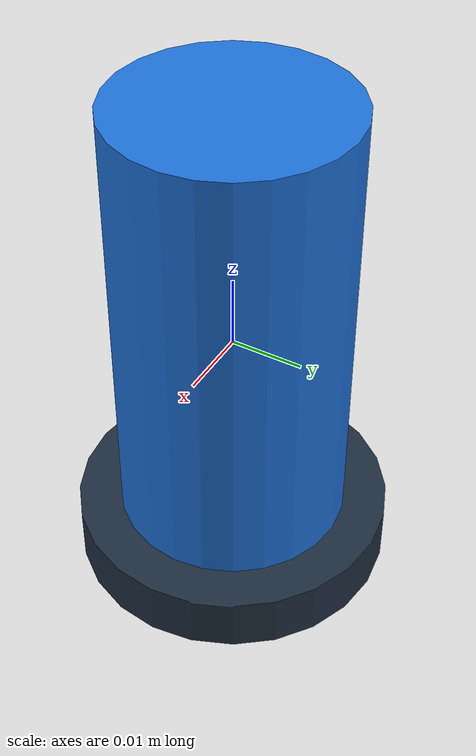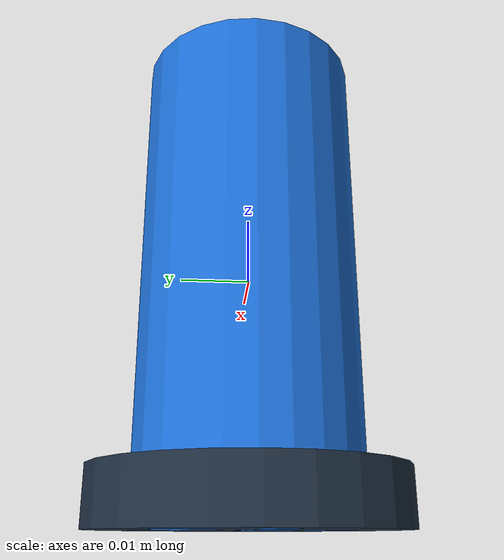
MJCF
<mujoco model="l1b_gripper_pin">
  <worldbody>
    <body>
      <body name="object">
        <geom name="pin_visual" type="cylinder" pos="0 0 0"
              size="0.016 0.035" contype="0" conaffinity="0"
              rgba="0.12 0.45 0.86 1" group="1"/>
        <geom name="pin_base_visual" type="cylinder" pos="0 0 -0.031"
              size="0.022 0.004" contype="0" conaffinity="0"
              rgba="0.12 0.18 0.25 1" group="1"/>
        <geom name="pin_collision" type="cylinder" pos="0 0 0"
              size="0.016 0.035" density="220" friction="0.75 0.2 0.05"
              rgba="0.12 0.45 0.86 1" group="0"/>
        <geom name="pin_base" type="cylinder" pos="0 0 -0.031"
              size="0.022 0.004" density="400" friction="0.8 0.2 0.05"
              rgba="0.12 0.18 0.25 1" group="0"/>
      </body>
      <site rgba="0 0 0 0" size="0.005" pos="0 0 -0.035" name="bottom_site"/>
      <site rgba="0 0 0 0" size="0.005" pos="0 0 0.035" name="top_site"/>
      <site rgba="0 0 0 0" size="0.005" pos="0.022 0 0" name="horizontal_radius_site"/>
    </body>
  </worldbody>
</mujoco>
